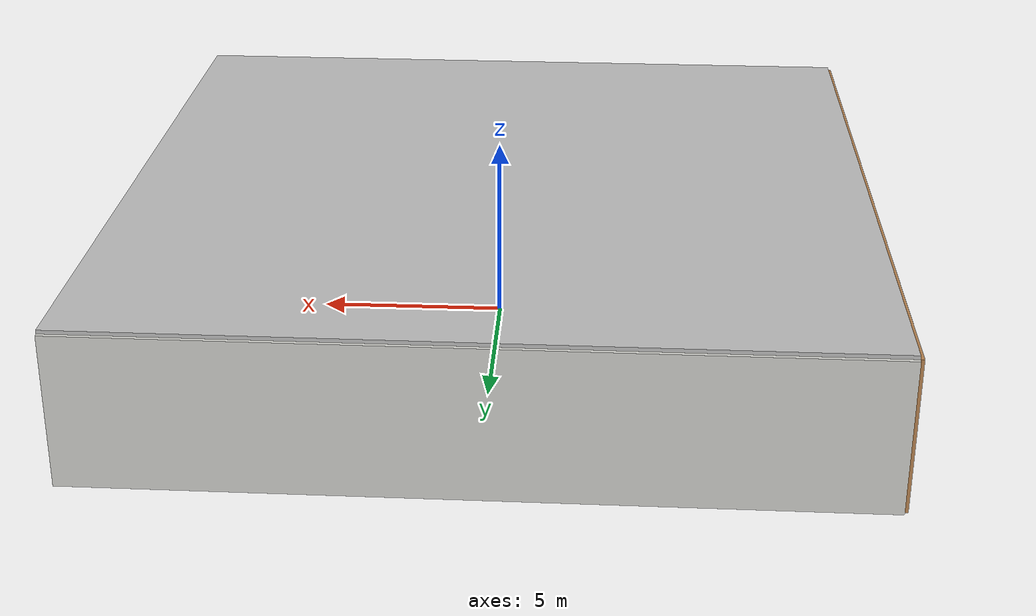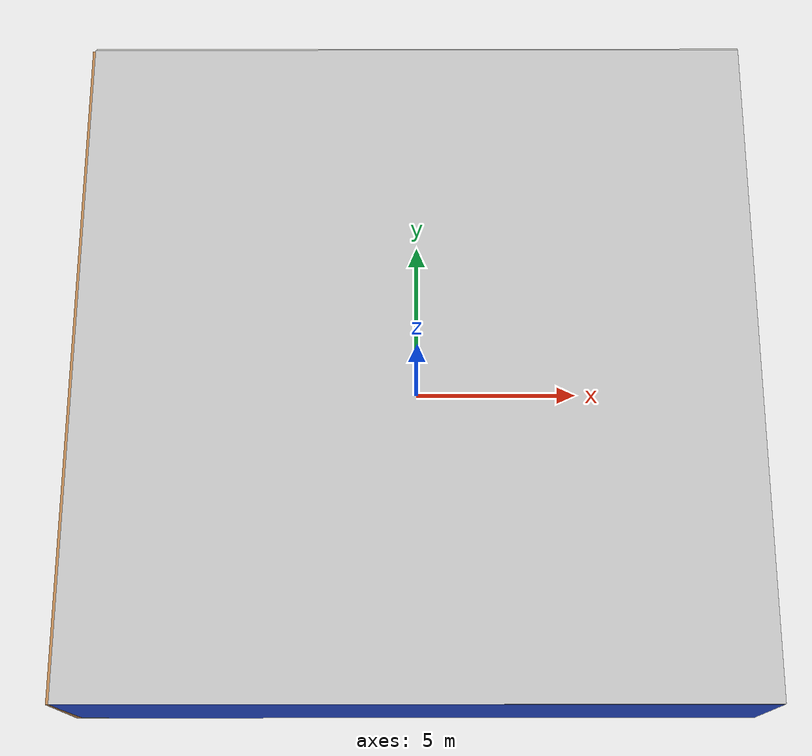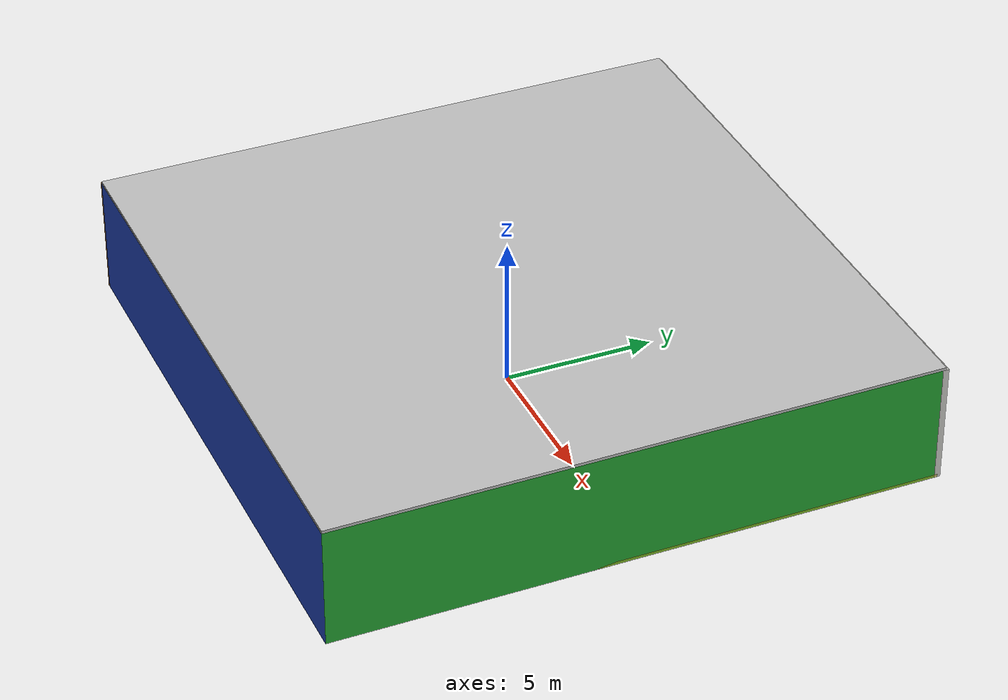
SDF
<sdf version="1.4">
 <world name="default">
  <physics type="ode">
   <max_step_size>0.001</max_step_size>
   <real_time_factor>1</real_time_factor>
   <real_time_update_rate>1000</real_time_update_rate>
   <gravity>0 0 -9.8</gravity>
  </physics>
  <scene><ambient>0.4 0.4 0.4 1</ambient><background>0.7 0.7 0.7 1</background><shadows>1</shadows></scene>
  <model name="Surrounding">
   <static>1</static>
   <link name="Ceiling">
    <collision name="Ceiling_Collision"><geometry><box><size>20 20 0.1</size></box></geometry></collision>
    <visual name="Ceiling_Visual">
     <geometry><box><size>20 20 0.1</size></box></geometry>
     <material>
      <script><uri>file://media/materials/scripts/gazebo.material</uri><name>Gazebo/Pioneer2Body</name></script>
     </material>
    </visual>
    <pose>0 0 4.05 0 0 0</pose>
   </link>
   <link name="Wall_South">
    <collision name="Wall_South_Collision">
     <geometry><box><size>20 0 4</size></box></geometry>
     <pose>0 0 2 0 -0 0</pose>
    </collision>
    <visual name="Wall_South_Visual">
     <pose>0 0 2 0 -0 0</pose>
     <geometry><box><size>20 0 4</size></box></geometry>
     <material>
      <script><uri>file://media/materials/scripts/gazebo.material</uri><name>Gazebo/BlueLaser</name></script>
     </material>
    </visual>
    <velocity_decay><linear>0</linear><angular>0</angular></velocity_decay>
    <pose>0 -10 0 0 -0 0</pose>
   </link>
   <link name="Wall_East">
    <collision name="Wall_21_Collision">
     <geometry><box><size>20 0 4</size></box></geometry>
     <pose>0 0 2 0 -0 0</pose>
    </collision>
    <visual name="Wall_21_Visual">
     <pose>0 0 2 0 -0 0</pose>
     <geometry><box><size>20 0 4</size></box></geometry>
     <material>
      <script><uri>file://media/materials/scripts/gazebo.material</uri><name>Gazebo/Green</name></script>
     </material>
    </visual>
    <velocity_decay><linear>0</linear><angular>0</angular></velocity_decay>
    <pose>10 0 0 0 -0 1.5708</pose>
   </link>
   <link name="Wall_North">
    <collision name="Wall_22_Collision">
     <geometry><box><size>20 0.2 4</size></box></geometry>
     <pose>0 0 2 0 -0 0</pose>
    </collision>
    <visual name="Wall_22_Visual">
     <pose>0 0 2 0 -0 0</pose>
     <geometry><box><size>20 0.2 4</size></box></geometry>
     <material>
      <script><uri>file://media/materials/scripts/gazebo.material</uri><name>Gazebo/CeilingTiled</name></script>
     </material>
    </visual>
    <velocity_decay><linear>0</linear><angular>0</angular></velocity_decay>
    <pose>0 10 0 0 -0 0</pose>
   </link>
   <link name="Wall_West">
    <collision name="Wall_23_Collision">
     <geometry><box><size>20 0.2 4</size></box></geometry>
     <pose>0 0 2 0 -0 0</pose>
    </collision>
    <visual name="Wall_23_Visual">
     <pose>0 0 2 0 -0 0</pose>
     <geometry><box><size>20 0.2 4</size></box></geometry>
     <material>
      <script><uri>file://media/materials/scripts/gazebo.material</uri><name>Gazebo/WoodFloor</name></script>
     </material>
    </visual>
    <velocity_decay><linear>0</linear><angular>0</angular></velocity_decay>
    <pose>-10 0 0 0 0 -1.5708</pose>
   </link>
   <link name="Ground_link">
    <collision name="collision">
     <pose>0 0 .05 0 -0 0</pose>
     <geometry><box><size>20 20 0.1</size></box></geometry>
    </collision>
    <visual name="visual">
     <pose>0 0 .05 0 -0 0</pose>
     <geometry><box><size>20 20 0.1</size></box></geometry>
     <material>
      <script>
       <uri>file://media/materials/scripts/gazebo.material</uri>
       <name>Gazebo/YellowTransparent</name>
      </script>
     </material>
    </visual>
   </link>
   <static>1</static>
  </model>
  <spherical_coordinates>
   <surface_model>EARTH_WGS84</surface_model>
   <latitude_deg>0</latitude_deg>
   <longitude_deg>0</longitude_deg>
   <elevation>0</elevation>
   <heading_deg>0</heading_deg>
  </spherical_coordinates>
  <light name="lightball_0" type="diffuse">
   <diffuse>0.8 0.8 0.8 1</diffuse>
   <specular>0.2 0.2 0.2 1</specular>
   <attenuation>
    <range>100</range>
    <constant>0.7</constant>
    <linear>0.01</linear>
    <quadratic>0.001</quadratic>
   </attenuation>
   <direction>-0.5 0.1 -0.9</direction>
   <pose>-9.28355880779 -5.31723833803 1.41152226501 0 0 0</pose>
  </light>
  <include>
   <uri>model://construction_cone</uri>
   <pose>-5.58962902186 0.986264173826 0 0 0 0.0696976587721</pose>
  </include>
  <include>
   <uri>model://construction_cone</uri>
   <pose>-1.43085741 -7.75641055412 0 0 0 1.19146089676</pose>
  </include>
  <include><uri>model://table</uri><pose>-2.38469395654 -1.08067421981 0 0 0 1.19018939268</pose></include>
  <include><uri>model://cabinet</uri><pose>-1.15289205171 2.36907071754 0 0 0 2.61698528923</pose></include>
  <include>
   <uri>model://textured_shapes</uri>
   <pose>-0.313938058655 4.6177847121 0 0 0 2.54070202615</pose>
  </include>
  <include><uri>model://cabinet</uri><pose>-2.23109518027 6.33407910723 0 0 0 2.61189618214</pose></include>
  <include><uri>model://table</uri><pose>1.52937895885 -5.22915935397 0 0 0 1.42815603823</pose></include>
  <include><uri>model://cabinet</uri><pose>0.44192919262 2.40245135719 0 0 0 2.2652372003</pose></include>
  <include><uri>model://cabinet</uri><pose>0.565823449697 4.55784891664 0 0 0 2.28641785599</pose></include>
  <include><uri>model://cabinet</uri><pose>2.3690511412 6.67850133368 0 0 0 3.04013709697</pose></include>
  <include><uri>model://cabinet</uri><pose>3.87150984518 -1.78975389179 0 0 0 2.99641532681</pose></include>
 </world>
</sdf>

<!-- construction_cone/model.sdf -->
<sdf version="1.5">
  <model name="Construction Cone">
    <link name="link">
      <collision name="collision">
        <geometry>
          <mesh>
            <scale>10 10 10</scale>
            <uri>file://isr-testbed/construction_cone/meshes/construction_cone.dae</uri>
          </mesh>
        </geometry>
      </collision>
      <visual name="visual">
        <geometry>
          <mesh>
            <scale>10 10 10</scale>
            <uri>file://isr-testbed/construction_cone/meshes/construction_cone.dae</uri>
          </mesh>
        </geometry>
      </visual>
    </link>
  </model>
</sdf>

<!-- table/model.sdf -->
<sdf version="1.5">
  <model name="table">
    <static>true</static>
    <link name="link">
      <collision name="surface">
        <pose>0 0 1.0 0 0 0</pose>
        <geometry>
          <box>
            <size>1.5 0.8 0.03</size>
          </box>
        </geometry>
        <surface>
          <friction>
            <ode>
              <mu>0.6</mu>
              <mu2>0.6</mu2>
            </ode>
          </friction>
        </surface>
      </collision>
      <visual name="visual1">
        <pose>0 0 1.0 0 0 0</pose>
        <geometry>
          <box>
            <size>1.5 0.8 0.03</size>
          </box>
        </geometry>
        <material>
          <script>
            <uri>model://media/materials/scripts/gazebo.material</uri>
            <name>Gazebo/Wood</name>
          </script>
        </material>
      </visual>
      <collision name="front_left_leg">
        <pose>0.68 0.38 0.5 0 0 0</pose>
        <geometry>
          <cylinder>
            <radius>0.02</radius>
            <length>1.0</length>
          </cylinder>
        </geometry>
      </collision>
      <visual name="front_left_leg">
        <pose>0.68 0.38 0.5 0 0 0</pose>
        <geometry>
          <cylinder>
            <radius>0.02</radius>
            <length>1.0</length>
          </cylinder>
        </geometry>
        <material>
          <script>
            <uri>model://media/materials/scripts/gazebo.material</uri>
            <name>Gazebo/Grey</name>
          </script>
        </material>
      </visual>
      <collision name="front_right_leg">
        <pose>0.68 -0.38 0.5 0 0 0</pose>
        <geometry>
          <cylinder>
            <radius>0.02</radius>
            <length>1.0</length>
          </cylinder>
        </geometry>
      </collision>
      <visual name="front_right_leg">
        <pose>0.68 -0.38 0.5 0 0 0</pose>
        <geometry>
          <cylinder>
            <radius>0.02</radius>
            <length>1.0</length>
          </cylinder>
        </geometry>
        <material>
          <script>
            <uri>model://media/materials/scripts/gazebo.material</uri>
            <name>Gazebo/Grey</name>
          </script>
        </material>
      </visual>
      <collision name="back_right_leg">
        <pose>-0.68 -0.38 0.5 0 0 0</pose>
        <geometry>
          <cylinder>
            <radius>0.02</radius>
            <length>1.0</length>
          </cylinder>
        </geometry>
      </collision>
      <visual name="back_right_leg">
        <pose>-0.68 -0.38 0.5 0 0 0</pose>
        <geometry>
          <cylinder>
            <radius>0.02</radius>
            <length>1.0</length>
          </cylinder>
        </geometry>
        <material>
          <script>
            <uri>model://media/materials/scripts/gazebo.material</uri>
            <name>Gazebo/Grey</name>
          </script>
        </material>
      </visual>
      <collision name="back_left_leg">
        <pose>-0.68 0.38 0.5 0 0 0</pose>
        <geometry>
          <cylinder>
            <radius>0.02</radius>
            <length>1.0</length>
          </cylinder>
        </geometry>
      </collision>
      <visual name="back_left_leg">
        <pose>-0.68 0.38 0.5 0 0 0</pose>
        <geometry>
          <cylinder>
            <radius>0.02</radius>
            <length>1.0</length>
          </cylinder>
        </geometry>
        <material>
          <script>
            <uri>model://media/materials/scripts/gazebo.material</uri>
            <name>Gazebo/Grey</name>
          </script>
        </material>
      </visual>
    </link>
  </model>
</sdf>

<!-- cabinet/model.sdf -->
<sdf version="1.5">
  <model name="cabinet">
    <static>true</static>
    <link name="cabinet_bottom_plate">
      <inertial>
        <pose>0 0 -1 0 0 0</pose>
        <inertia>
          <ixx>2.050000</ixx>
          <ixy>0</ixy>
          <ixz>0</ixz>
          <iyy>2.050000</iyy>
          <iyz>0</iyz>
          <izz>2.050000</izz>
        </inertia>
        <mass>25.000000</mass>
      </inertial>
      <collision name="cabinet_bottom_plate_geom">
        <pose>0 0 0.010000 0 0 0</pose>
        <geometry>
          <box>
            <size>0.450000 0.450000 0.020000</size>
          </box>
        </geometry>
      </collision>
      <visual name="cabinet_bottom_plate_geom_visual">
        <pose>0 0 0.010000 0 0 0</pose>
        <geometry>
          <box>
            <size>0.450000 0.450000 0.020000</size>
          </box>
        </geometry>
        <material>
          <script>
            <uri>model://media/materials/scripts/gazebo.material</uri>
            <name>Gazebo/Wood</name>
          </script>
        </material>
      </visual>
      <collision name="cabinet_bottom_plate_geom_cabinet_back_plate">
        <pose>0.235000 0 0.510000 0 0 0</pose>
        <geometry>
          <box>
            <size>0.020000 0.450000 1.020000</size>
          </box>
        </geometry>
      </collision>
      <visual name="cabinet_bottom_plate_geom_cabinet_back_plate_visual">
        <pose>0.235000 0 0.510000 0 0 0</pose>
        <geometry>
          <box>
            <size>0.020000 0.450000 1.020000</size>
          </box>
        </geometry>
        <material>
          <script>
            <uri>model://media/materials/scripts/gazebo.material</uri>
            <name>Gazebo/Wood</name>
          </script>
        </material>
      </visual>
      <collision name="cabinet_bottom_plate_geom_cabinet_left_plate">
        <pose>0 0.235000 0.510000 0 0 0</pose>
        <geometry>
          <box>
            <size>0.450000 0.020000 1.020000</size>
          </box>
        </geometry>
      </collision>
      <visual name="cabinet_bottom_plate_geom_cabinet_left_plate_visual">
        <pose>0 0.235000 0.510000 0 0 0</pose>
        <geometry>
          <box>
            <size>0.450000 0.020000 1.020000</size>
          </box>
        </geometry>
        <material>
          <script>
            <uri>model://media/materials/scripts/gazebo.material</uri>
            <name>Gazebo/Wood</name>
          </script>
        </material>
      </visual>
      <collision name="cabinet_bottom_plate_geom_cabinet_middle_plate">
        <pose>0 0 0.510000 0 0 0</pose>
        <geometry>
          <box>
            <size>0.450000 0.450000 0.020000</size>
          </box>
        </geometry>
      </collision>
      <visual name="cabinet_bottom_plate_geom_cabinet_middle_plate_visual">
        <pose>0 0 0.510000 0 0 0</pose>
        <geometry>
          <box>
            <size>0.450000 0.450000 0.020000</size>
          </box>
        </geometry>
        <material>
          <script>
            <uri>model://media/materials/scripts/gazebo.material</uri>
            <name>Gazebo/Wood</name>
          </script>
        </material>
      </visual>
      <collision name="cabinet_bottom_plate_geom_cabinet_right_plate">
        <pose>0 -0.235000 0.510000 0 0 0</pose>
        <geometry>
          <box>
            <size>0.450000 0.020000 1.020000</size>
          </box>
        </geometry>
      </collision>
      <visual name="cabinet_bottom_plate_geom_cabinet_right_plate_visual">
        <pose>0 -0.235000 0.510000 0 0 0</pose>
        <geometry>
          <box>
            <size>0.450000 0.020000 1.020000</size>
          </box>
        </geometry>
        <material>
          <script>
            <uri>model://media/materials/scripts/gazebo.material</uri>
            <name>Gazebo/Wood</name>
          </script>
        </material>
      </visual>
      <collision name="cabinet_bottom_plate_geom_cabinet_top_plate">
        <pose>0 0 1.010000 0 0 0</pose>
        <geometry>
          <box>
            <size>0.450000 0.450000 0.020000</size>
          </box>
        </geometry>
      </collision>
      <visual name="cabinet_bottom_plate_geom_cabinet_top_plate_visual">
        <pose>0 0 1.010000 0 0 0</pose>
        <geometry>
          <box>
            <size>0.450000 0.450000 0.020000</size>
          </box>
        </geometry>
        <material>
          <script>
            <uri>model://media/materials/scripts/gazebo.material</uri>
            <name>Gazebo/Wood</name>
          </script>
        </material>
      </visual>
    </link>
  </model>
</sdf>

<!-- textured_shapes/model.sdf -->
<sdf version="1.6">
  <model name="textured_shapes">
    <pose>0 0 0.5 0 0 0</pose>
    <link name="box">
      <pose>0 -1.5 0 0 0 0</pose>
      <collision name="collision">
        <geometry>
          <box>
            <size>1 1 1</size>
          </box>
        </geometry>
      </collision>
      <visual name="visual">
        <geometry>
          <box>
            <size>1 1 1</size>
          </box>
        </geometry>
        <material>
          <script>
            <uri>model://../model_source/models/textured_shapes/materials/scripts</uri>
            <uri>model://../model_source/models/textured_shapes/materials/textures</uri>
            <name>TexturedShape/Squares</name>
          </script>
        </material>
      </visual>
    </link>
    <link name="sphere">
      <collision name="collision">
        <geometry>
          <sphere>
            <radius>0.5</radius>
          </sphere>
        </geometry>
      </collision>
      <visual name="visual">
        <geometry>
          <sphere>
            <radius>0.5</radius>
          </sphere>
        </geometry>
        <material>
          <script>
            <uri>model://../model_source/models/textured_shapes/materials/scripts</uri>
            <uri>model://../model_source/models/textured_shapes/materials/textures</uri>
            <name>TexturedShape/Squares</name>
          </script>
        </material>
      </visual>
    </link>
    <link name="cylinder">
      <pose>0 1.5 0 0 0 0</pose>
      <collision name="collision">
        <geometry>
          <cylinder>
            <radius>0.5</radius>
            <length>1</length>
          </cylinder>
        </geometry>
      </collision>
      <visual name="visual">
        <geometry>
          <cylinder>
            <radius>0.5</radius>
            <length>1</length>
          </cylinder>
        </geometry>
        <material>
          <script>
            <uri>model://../model_source/models/textured_shapes/materials/scripts</uri>
            <uri>model://../model_source/models/textured_shapes/materials/textures</uri>
            <name>TexturedShape/Squares</name>
          </script>
        </material>
      </visual>
    </link>
  </model>
</sdf>
